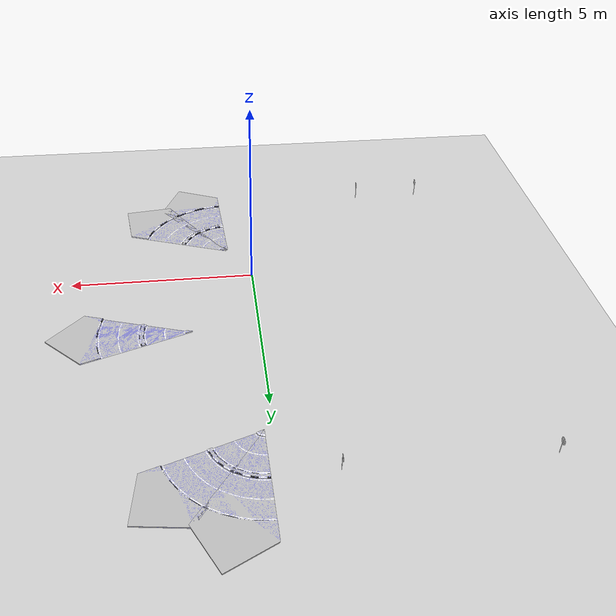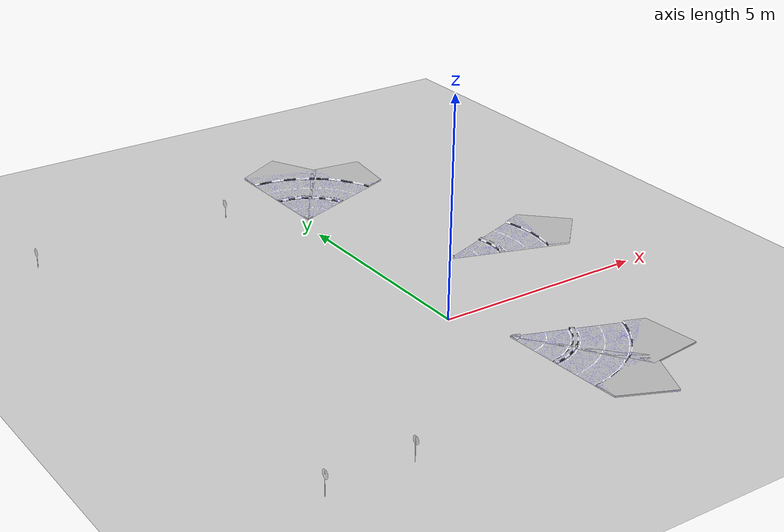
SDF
<sdf version="1.4">
 <world name="Tu world">
  <include><uri>model://sun</uri></include>
  <light type="point" name="end_race_light"><pose>-6.2063 -3.8918 1.0 0 0 0</pose></light>
  <light type="point" name="start_race_light"><pose>-0.6902 7.3537 1.0 0 0 0</pose></light>
  <include><uri>model://ground_plane</uri></include>
  <physics type="ode">
   <real_time_update_rate>1000.0</real_time_update_rate>
   <max_step_size>0.001</max_step_size>
   <real_time_factor>1</real_time_factor>
   <ode>
    <solver>
     <type>quick</type>
     <iters>150</iters>
     <precon_iters>0</precon_iters>
     <sor>1.400000</sor>
     <use_dynamic_moi_rescaling>1</use_dynamic_moi_rescaling>
    </solver>
    <constraints>
     <cfm>0.00001</cfm>
     <erp>0.2</erp>
     <contact_max_correcting_vel>2000.000000</contact_max_correcting_vel>
     <contact_surface_layer>0.01000</contact_surface_layer>
    </constraints>
   </ode>
  </physics>
  <include>
   <name>corner_small_1</name>
   <pose>1.3464 9.3834 0 0 0 -2.6665</pose>
   <uri>model://corner_small</uri>
  </include>
  <include>
   <name>corner_small_2</name>
   <pose>3.1606 8.1287 0 0 0 3.0187</pose>
   <uri>model://corner_small</uri>
  </include>
  <include>
   <name>corner_small_3</name>
   <pose>5.4514 2.3458 0 0 0 2.3726</pose>
   <uri>model://corner_small</uri>
  </include>
  <include>
   <name>corner_small_4</name>
   <pose>3.5940 -3.5768 0 0 0 1.6926</pose>
   <uri>model://corner_small</uri>
  </include>
  <include>
   <name>corner_small_5</name>
   <pose>1.9883 -4.7617 0 0 0 1.1648</pose>
   <uri>model://corner_small</uri>
  </include>
  <include>
   <name>sign-ahead</name>
   <pose>-6.13 7.08 -0.1 0 0 -1.5708</pose>
   <uri>model://0-ahead-only</uri>
  </include>
  <include>
   <name>sign-60</name>
   <pose>-1.3279 7.0799 -0.1 0 0 -1.5708</pose>
   <uri>model://5-maximum-speed-limit60</uri>
  </include>
  <include><name>11-stop</name><pose>-5.5674 -3.8884 0 0 0 1.5708</pose><uri>model://11-stop</uri></include>
  <include><name>ahead</name><pose>-3.6623 -3.8884 0 0 0 1.5708</pose><uri>model://0-ahead-only</uri></include>
  <scene>
   <ambient>0.4 0.4 0.4 1</ambient>
   <background>0.7 0.7 0.7 1</background>
   <shadows>true</shadows>
   <sky><clouds><speed>0</speed></clouds></sky>
  </scene>
 </world>
</sdf>

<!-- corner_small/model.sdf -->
<sdf version='1.7'>
  <model name='corner_small'>
	<static>true</static>
    <link name='link_0'>

		<collision name="collision">
		<geometry>
			<mesh>
				<uri>model://corner_small/mesh/model.dae</uri>
	            <scale>0.0 0.0 0.0</scale>
			</mesh>
		</geometry>
		</collision>

		<visual name="visual">
		<cast_shadows>true</cast_shadows>
		<geometry>
			<mesh>
				<uri>model://corner_small/mesh/model.dae</uri>
	            <scale>0.13 0.13 0.13</scale>
			</mesh>
		</geometry>
		</visual>
    </link>
  </model>
</sdf>

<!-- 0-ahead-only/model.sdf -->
<sdf version='1.7'>
  <model name='0-ahead-only'>
	<static>true</static>
    <link name='link_0'>

		<collision name="collision">
		<geometry>
			<mesh>
				<uri>model://0-ahead-only/mesh/model.dae</uri>
	            <scale>0 0 0</scale>
			</mesh>
		</geometry>
		</collision>

		<visual name="visual">
		<cast_shadows>true</cast_shadows>
		<geometry>
			<mesh>
				<uri>model://0-ahead-only/mesh/model.dae</uri>
	            <scale>0.1 0.1 0.1</scale>
			</mesh>
		</geometry>
		</visual>
    </link>
  </model>
</sdf>

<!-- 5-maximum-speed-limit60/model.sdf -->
<sdf version='1.7'>
  <model name='5-maximum-speed-limit60'>
	<static>true</static>
    <link name='link_0'>

		<collision name="collision">
		<geometry>
			<mesh>
				<uri>model://5-maximum-speed-limit60/mesh/model.dae</uri>
	            <scale>0 0 0</scale>
			</mesh>
		</geometry>
		</collision>

		<visual name="visual">
		<cast_shadows>true</cast_shadows>
		<geometry>
			<mesh>
				<uri>model://5-maximum-speed-limit60/mesh/model.dae</uri>
	            <scale>0.1 0.1 0.1</scale>
			</mesh>
		</geometry>
		</visual>
    </link>
  </model>
</sdf>

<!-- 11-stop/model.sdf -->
<sdf version='1.7'>
  <model name='11-stop'>
	<static>true</static>
    <link name='link_0'>

		<collision name="collision">
		<geometry>
			<mesh>
				<uri>model://11-stop/mesh/model.dae</uri>
	            <scale>0 0 0</scale>
			</mesh>
		</geometry>
		</collision>

		<visual name="visual">
		<cast_shadows>true</cast_shadows>
		<geometry>
			<mesh>
				<uri>model://11-stop/mesh/model.dae</uri>
	            <scale>0.1 0.1 0.1</scale>
			</mesh>
		</geometry>
		</visual>
    </link>
  </model>
</sdf>
